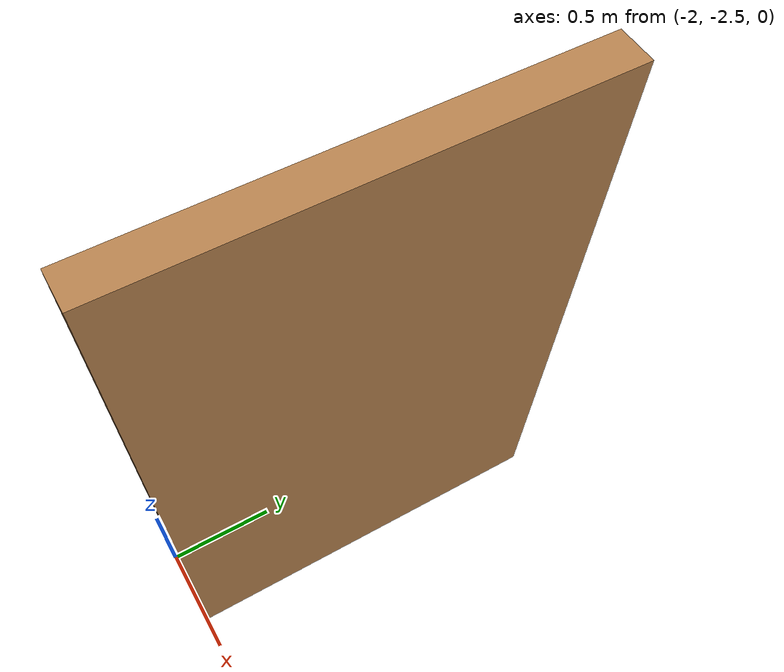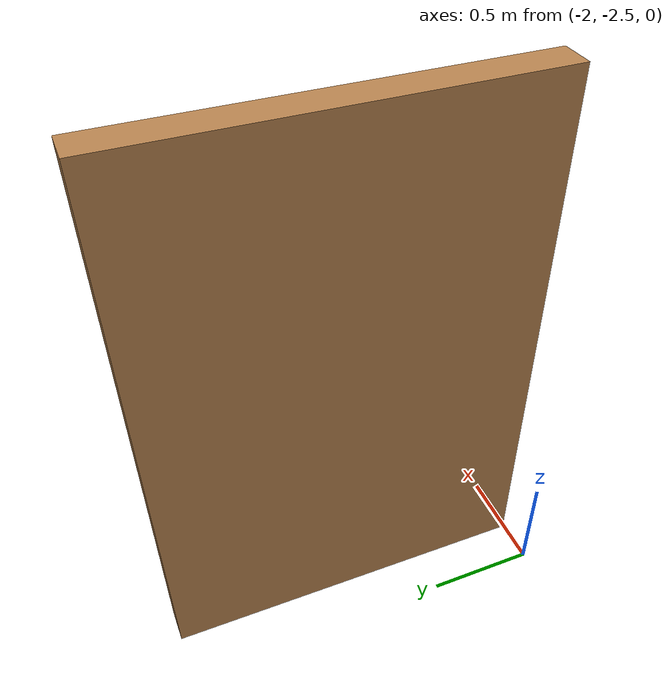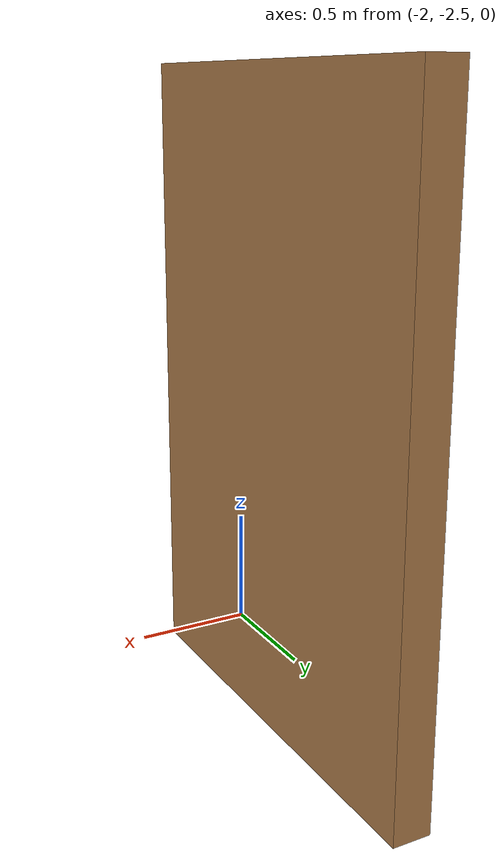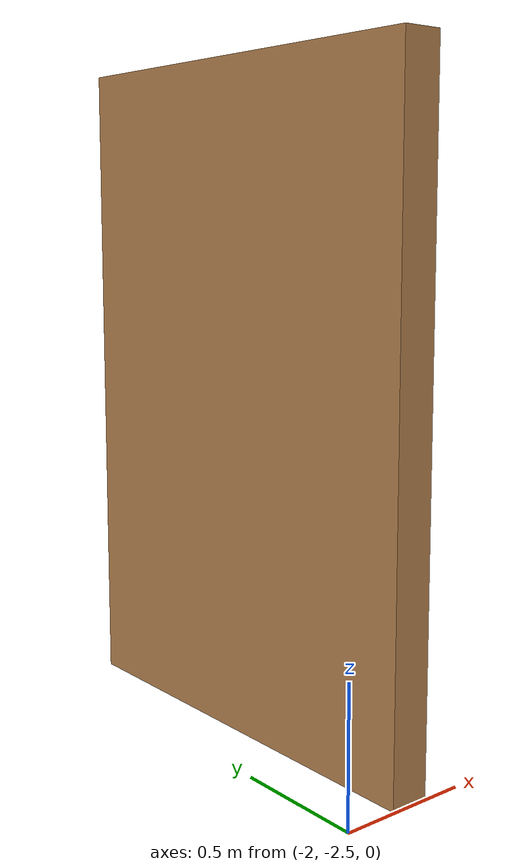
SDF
<?xml version='1.0'?>
<sdf version='1.7'>
  <model name='wall2m'>
    <pose>-0.8975 -1.2475 0 0 -0 0</pose>
    <link name='Wall_4'>
      <collision name='Wall_4_Collision'>
        <geometry>
          <box>
            <size>1.75 0.15 2.5</size>
          </box>
        </geometry>
        <pose>0 0 1.25 0 -0 0</pose>
      </collision>
      <visual name='Wall_4_Visual'>
        <pose>0 0 1.25 0 -0 0</pose>
        <geometry>
          <box>
            <size>1.75 0.15 2.5</size>
          </box>
        </geometry>
        <material>
          <script>
            <uri>file://media/materials/scripts/gazebo.material</uri>
            <name>Gazebo/Wood</name>
          </script>
          <ambient>1 1 1 1</ambient>
        </material>
        <meta>
          <layer>0</layer>
        </meta>
      </visual>
      <pose>-0.8225 -0.3725 0 0 -0 -1.5708</pose>
    </link>
    <static>1</static>
  </model>
</sdf>
